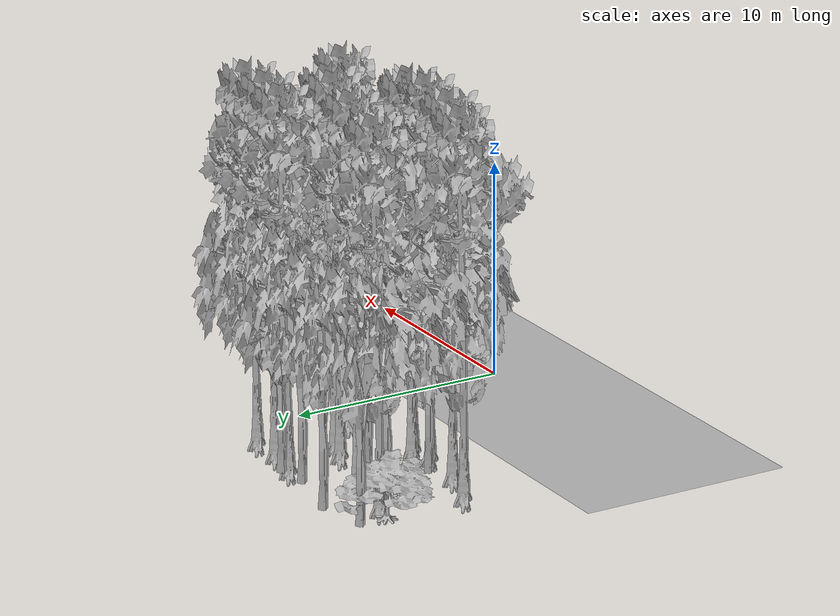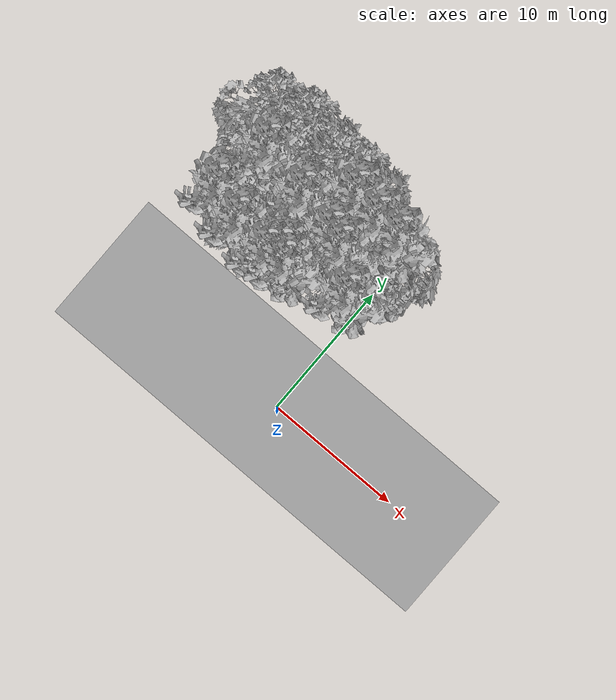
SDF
<sdf version="1.7">
 <world name="default">
  <model name="ground_plane">
   <static>1</static>
   <link name="link">
    <collision name="collision">
     <pose>-50 0 0 0 -0 0</pose>
     <geometry><plane><normal>0 0 1</normal><size>100 100</size></plane></geometry>
     <surface><contact><ode><min_depth>0.01</min_depth><max_vel>0</max_vel></ode></contact></surface>
    </collision>
    <visual name="grass">
     <cast_shadows>0</cast_shadows>
     <geometry>
      <mesh>
       <scale>0.5814285714285714 0.18142857142857144 0.1</scale>
       <uri>file://grass_plane/meshes/grass_plane.dae</uri>
      </mesh>
     </geometry>
    </visual>
   </link>
  </model>
  <model name="Tree 15">
   <static>1</static>
   <pose>-12.046379397283076 13.599554694582526 0 1.57079 -0 0</pose>
   <link name="link">
    <collision name="collision">
     <geometry><mesh><scale>3.5 5 3.5</scale><uri>model://tree_2/meshes/tree_2.obj</uri></mesh></geometry>
    </collision>
    <visual name="visual">
     <geometry><mesh><scale>3.5 5 3.5</scale><uri>model://tree_2/meshes/tree_2.obj</uri></mesh></geometry>
    </visual>
   </link>
  </model>
  <model name="Tree 18">
   <static>1</static>
   <pose>-11.32614592529736 8.28942585479085 0 1.57079 -0 0</pose>
   <link name="link">
    <collision name="collision">
     <geometry><mesh><scale>3.5 5 3.5</scale><uri>model://tree_9/meshes/tree_9.obj</uri></mesh></geometry>
    </collision>
    <visual name="visual">
     <geometry><mesh><scale>3.5 5 3.5</scale><uri>model://tree_9/meshes/tree_9.obj</uri></mesh></geometry>
    </visual>
   </link>
  </model>
  <model name="Tree 65">
   <static>1</static>
   <pose>-9.740863253544184 14.079672595630345 0 1.57079 -0 0</pose>
   <link name="link">
    <collision name="collision">
     <geometry><mesh><scale>3.5 5 3.5</scale><uri>model://tree_2/meshes/tree_2.obj</uri></mesh></geometry>
    </collision>
    <visual name="visual">
     <geometry><mesh><scale>3.5 5 3.5</scale><uri>model://tree_2/meshes/tree_2.obj</uri></mesh></geometry>
    </visual>
   </link>
  </model>
  <model name="Tree 78">
   <static>1</static>
   <pose>-4.60418233520636 10.469965805418362 0 1.57079 -0 0</pose>
   <link name="link">
    <collision name="collision">
     <geometry><mesh><scale>3.5 5 3.5</scale><uri>model://tree_9/meshes/tree_9.obj</uri></mesh></geometry>
    </collision>
    <visual name="visual">
     <geometry><mesh><scale>3.5 5 3.5</scale><uri>model://tree_9/meshes/tree_9.obj</uri></mesh></geometry>
    </visual>
   </link>
  </model>
  <model name="Tree 113">
   <static>1</static>
   <pose>-0.8056216842813413 11.303831603391814 0 1.57079 -0 0</pose>
   <link name="link">
    <collision name="collision">
     <geometry><mesh><scale>3.5 5 3.5</scale><uri>model://tree_2/meshes/tree_2.obj</uri></mesh></geometry>
    </collision>
    <visual name="visual">
     <geometry><mesh><scale>3.5 5 3.5</scale><uri>model://tree_2/meshes/tree_2.obj</uri></mesh></geometry>
    </visual>
   </link>
  </model>
  <model name="Tree 117">
   <static>1</static>
   <pose>-7.0830133438522935 10.463800672009075 0 1.57079 -0 0</pose>
   <link name="link">
    <collision name="collision">
     <geometry><mesh><scale>3.5 5 3.5</scale><uri>model://tree_2/meshes/tree_2.obj</uri></mesh></geometry>
    </collision>
    <visual name="visual">
     <geometry><mesh><scale>3.5 5 3.5</scale><uri>model://tree_2/meshes/tree_2.obj</uri></mesh></geometry>
    </visual>
   </link>
  </model>
  <model name="Tree 144">
   <static>1</static>
   <pose>-10.16636258996349 11.285821460990782 0 1.57079 -0 0</pose>
   <link name="link">
    <collision name="collision">
     <geometry><mesh><scale>3.5 5 3.5</scale><uri>model://tree_2/meshes/tree_2.obj</uri></mesh></geometry>
    </collision>
    <visual name="visual">
     <geometry><mesh><scale>3.5 5 3.5</scale><uri>model://tree_2/meshes/tree_2.obj</uri></mesh></geometry>
    </visual>
   </link>
  </model>
  <model name="Tree 151">
   <static>1</static>
   <pose>-3.13300126666919 12.846824578577241 0 1.57079 -0 0</pose>
   <link name="link">
    <collision name="collision">
     <geometry><mesh><scale>3.5 5 3.5</scale><uri>model://tree_9/meshes/tree_9.obj</uri></mesh></geometry>
    </collision>
    <visual name="visual">
     <geometry><mesh><scale>3.5 5 3.5</scale><uri>model://tree_9/meshes/tree_9.obj</uri></mesh></geometry>
    </visual>
   </link>
  </model>
  <model name="Tree 186">
   <static>1</static>
   <pose>-6.170905857127856 7.842832899160147 0 1.57079 -0 0</pose>
   <link name="link">
    <collision name="collision">
     <geometry><mesh><scale>3.5 5 3.5</scale><uri>model://tree_9/meshes/tree_9.obj</uri></mesh></geometry>
    </collision>
    <visual name="visual">
     <geometry><mesh><scale>3.5 5 3.5</scale><uri>model://tree_9/meshes/tree_9.obj</uri></mesh></geometry>
    </visual>
   </link>
  </model>
  <model name="Tree 207">
   <static>1</static>
   <pose>-6.786785685638115 13.458793438437453 0 1.57079 -0 0</pose>
   <link name="link">
    <collision name="collision">
     <geometry><mesh><scale>3.5 5 3.5</scale><uri>model://tree_2/meshes/tree_2.obj</uri></mesh></geometry>
    </collision>
    <visual name="visual">
     <geometry><mesh><scale>3.5 5 3.5</scale><uri>model://tree_2/meshes/tree_2.obj</uri></mesh></geometry>
    </visual>
   </link>
  </model>
  <model name="Tree 214">
   <static>1</static>
   <pose>-5.589715399121552 7.4260920770829095 0 1.57079 -0 0</pose>
   <link name="link">
    <collision name="collision">
     <geometry><mesh><scale>3.5 5 3.5</scale><uri>model://tree_9/meshes/tree_9.obj</uri></mesh></geometry>
    </collision>
    <visual name="visual">
     <geometry><mesh><scale>3.5 5 3.5</scale><uri>model://tree_9/meshes/tree_9.obj</uri></mesh></geometry>
    </visual>
   </link>
  </model>
  <model name="Tree 243">
   <static>1</static>
   <pose>-1.546522031195849 8.330934097147924 0 1.57079 -0 0</pose>
   <link name="link">
    <collision name="collision">
     <geometry><mesh><scale>3.5 5 3.5</scale><uri>model://tree_9/meshes/tree_9.obj</uri></mesh></geometry>
    </collision>
    <visual name="visual">
     <geometry><mesh><scale>3.5 5 3.5</scale><uri>model://tree_9/meshes/tree_9.obj</uri></mesh></geometry>
    </visual>
   </link>
  </model>
  <model name="Tree 255">
   <static>1</static>
   <pose>-9.230678096242926 7.601735107725776 0 1.57079 -0 0</pose>
   <link name="link">
    <collision name="collision">
     <geometry><mesh><scale>3.5 5 3.5</scale><uri>model://tree_9/meshes/tree_9.obj</uri></mesh></geometry>
    </collision>
    <visual name="visual">
     <geometry><mesh><scale>3.5 5 3.5</scale><uri>model://tree_9/meshes/tree_9.obj</uri></mesh></geometry>
    </visual>
   </link>
  </model>
  <model name="Tree 260">
   <static>1</static>
   <pose>-1.444162531985988 12.816644879668967 0 1.57079 -0 0</pose>
   <link name="link">
    <collision name="collision">
     <geometry><mesh><scale>3.5 5 3.5</scale><uri>model://tree_9/meshes/tree_9.obj</uri></mesh></geometry>
    </collision>
    <visual name="visual">
     <geometry><mesh><scale>3.5 5 3.5</scale><uri>model://tree_9/meshes/tree_9.obj</uri></mesh></geometry>
    </visual>
   </link>
  </model>
  <model name="Tree 278">
   <static>1</static>
   <pose>-3.6547660864064966 10.202770255582152 0 1.57079 -0 0</pose>
   <link name="link">
    <collision name="collision">
     <geometry><mesh><scale>3.5 5 3.5</scale><uri>model://tree_9/meshes/tree_9.obj</uri></mesh></geometry>
    </collision>
    <visual name="visual">
     <geometry><mesh><scale>3.5 5 3.5</scale><uri>model://tree_9/meshes/tree_9.obj</uri></mesh></geometry>
    </visual>
   </link>
  </model>
  <model name="Tree 285">
   <static>1</static>
   <pose>-5.319002932846281 13.649554570207027 0 1.57079 -0 0</pose>
   <link name="link">
    <collision name="collision">
     <geometry><mesh><scale>3.5 5 3.5</scale><uri>model://tree_2/meshes/tree_2.obj</uri></mesh></geometry>
    </collision>
    <visual name="visual">
     <geometry><mesh><scale>3.5 5 3.5</scale><uri>model://tree_2/meshes/tree_2.obj</uri></mesh></geometry>
    </visual>
   </link>
  </model>
  <model name="Tree 301">
   <static>1</static>
   <pose>-3.486360731128535 9.892109551727991 0 1.57079 -0 0</pose>
   <link name="link">
    <collision name="collision">
     <geometry><mesh><scale>3.5 5 3.5</scale><uri>model://tree_2/meshes/tree_2.obj</uri></mesh></geometry>
    </collision>
    <visual name="visual">
     <geometry><mesh><scale>3.5 5 3.5</scale><uri>model://tree_2/meshes/tree_2.obj</uri></mesh></geometry>
    </visual>
   </link>
  </model>
  <model name="Tree 345">
   <static>1</static>
   <pose>-10.599219144860214 11.924021119991078 0 1.57079 -0 0</pose>
   <link name="link">
    <collision name="collision">
     <geometry><mesh><scale>3.5 5 3.5</scale><uri>model://tree_9/meshes/tree_9.obj</uri></mesh></geometry>
    </collision>
    <visual name="visual">
     <geometry><mesh><scale>3.5 5 3.5</scale><uri>model://tree_9/meshes/tree_9.obj</uri></mesh></geometry>
    </visual>
   </link>
  </model>
  <model name="Tree 346">
   <static>1</static>
   <pose>-11.87252691133456 12.30048097756261 0 1.57079 -0 0</pose>
   <link name="link">
    <collision name="collision">
     <geometry><mesh><scale>4 2.5 4</scale><uri>model://tree_1/meshes/tree_1.obj</uri></mesh></geometry>
    </collision>
    <visual name="visual">
     <geometry><mesh><scale>4 2.5 4</scale><uri>model://tree_1/meshes/tree_1.obj</uri></mesh></geometry>
    </visual>
   </link>
  </model>
  <model name="Tree 348">
   <static>1</static>
   <pose>-4.990994916905848 13.182526253094604 0 1.57079 -0 0</pose>
   <link name="link">
    <collision name="collision">
     <geometry><mesh><scale>3.5 5 3.5</scale><uri>model://tree_9/meshes/tree_9.obj</uri></mesh></geometry>
    </collision>
    <visual name="visual">
     <geometry><mesh><scale>3.5 5 3.5</scale><uri>model://tree_9/meshes/tree_9.obj</uri></mesh></geometry>
    </visual>
   </link>
  </model>
  <model name="Tree 356">
   <static>1</static>
   <pose>-8.503569051076674 8.28380442636643 0 1.57079 -0 0</pose>
   <link name="link">
    <collision name="collision">
     <geometry><mesh><scale>3.5 5 3.5</scale><uri>model://tree_2/meshes/tree_2.obj</uri></mesh></geometry>
    </collision>
    <visual name="visual">
     <geometry><mesh><scale>3.5 5 3.5</scale><uri>model://tree_2/meshes/tree_2.obj</uri></mesh></geometry>
    </visual>
   </link>
  </model>
  <model name="Tree 363">
   <static>1</static>
   <pose>-6.816778932011857 7.291575690493893 0 1.57079 -0 0</pose>
   <link name="link">
    <collision name="collision">
     <geometry><mesh><scale>3.5 5 3.5</scale><uri>model://tree_9/meshes/tree_9.obj</uri></mesh></geometry>
    </collision>
    <visual name="visual">
     <geometry><mesh><scale>3.5 5 3.5</scale><uri>model://tree_9/meshes/tree_9.obj</uri></mesh></geometry>
    </visual>
   </link>
  </model>
  <model name="Tree 529">
   <static>1</static>
   <pose>-7.317440299872658 11.149244357496098 0 1.57079 -0 0</pose>
   <link name="link">
    <collision name="collision">
     <geometry><mesh><scale>3.5 5 3.5</scale><uri>model://tree_9/meshes/tree_9.obj</uri></mesh></geometry>
    </collision>
    <visual name="visual">
     <geometry><mesh><scale>3.5 5 3.5</scale><uri>model://tree_9/meshes/tree_9.obj</uri></mesh></geometry>
    </visual>
   </link>
  </model>
 </world>
</sdf>
